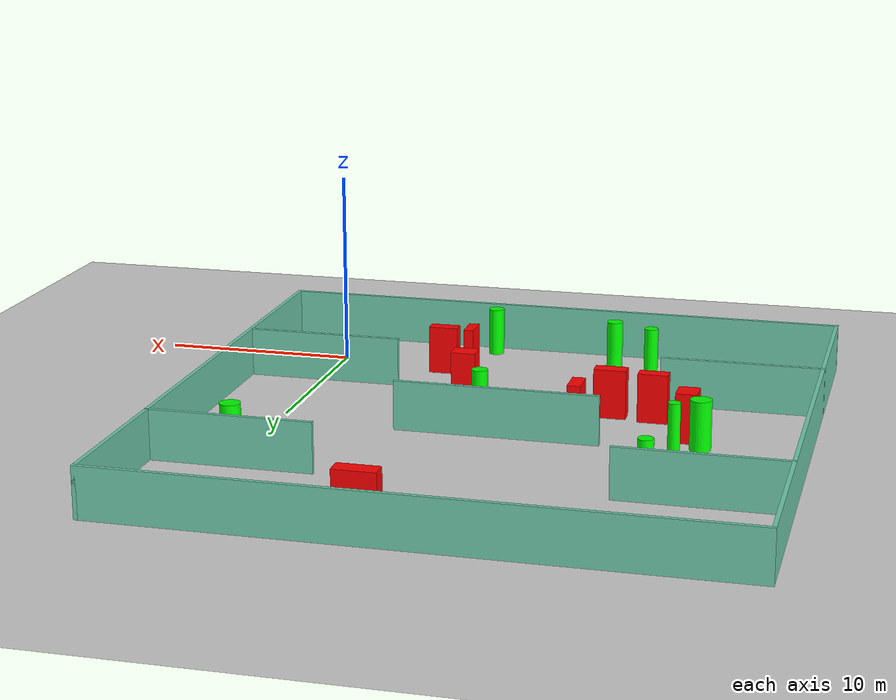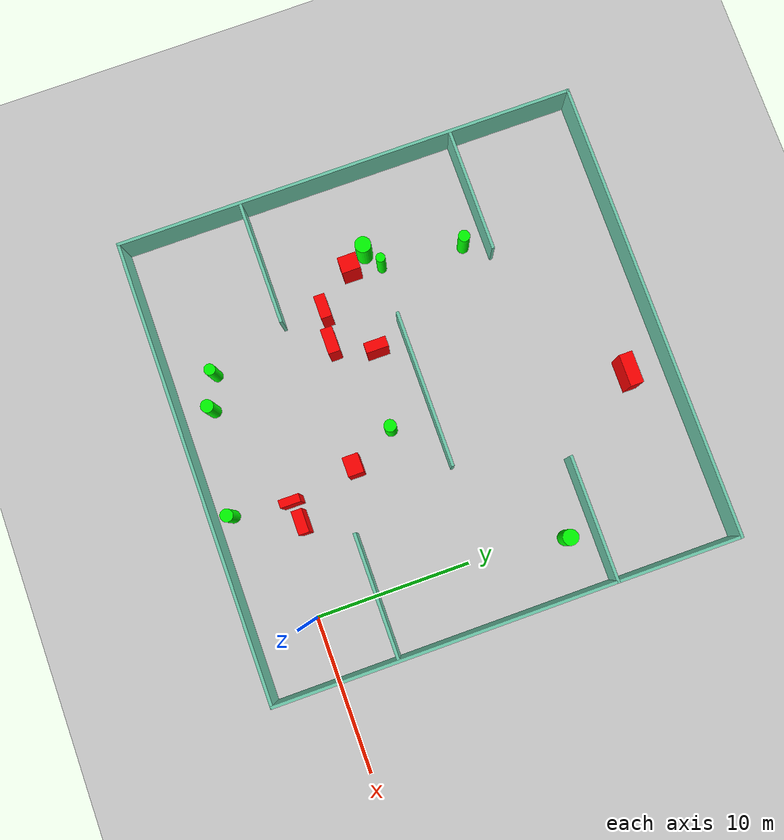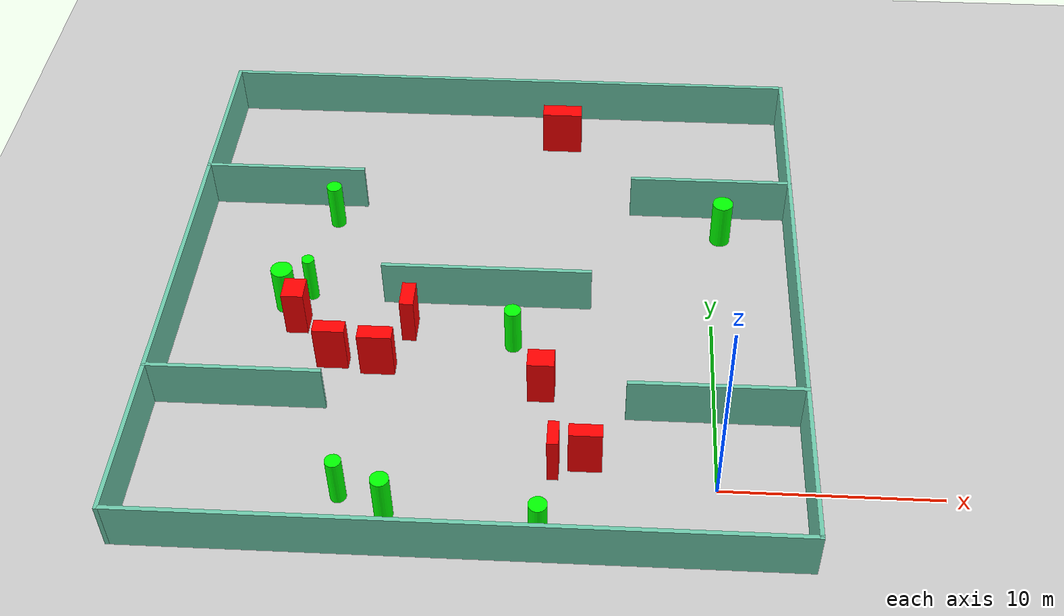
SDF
<sdf version="1.7">
 <world name="default">
  <light name="sun" type="directional">
   <pose>0 0 10 0 -0 0</pose>
   <diffuse>0.8 0.8 0.8 1</diffuse>
   <specular>0.2 0.2 0.2 1</specular>
   <attenuation>
    <range>1000</range>
    <constant>0.9</constant>
    <linear>0.01</linear>
    <quadratic>0.001</quadratic>
   </attenuation>
   <direction>-0.5 0.1 -0.9</direction>
   <spot><inner_angle>0</inner_angle><outer_angle>0</outer_angle><falloff>0</falloff></spot>
  </light>
  <model name="ground_plane">
   <static>1</static>
   <link name="link">
    <collision name="collision">
     <geometry><plane><normal>0 0 1</normal><size>100 100</size></plane></geometry>
     <surface>
      <contact><collide_bitmask>65535</collide_bitmask></contact>
      <friction><ode><mu>100</mu><mu2>50</mu2></ode></friction>
     </surface>
    </collision>
    <visual name="visual">
     <cast_shadows>0</cast_shadows>
     <geometry><plane><normal>0 0 1</normal><size>100 100</size></plane></geometry>
     <material>
      <script><uri>file://media/materials/scripts/gazebo.material</uri><name>Gazebo/Grey</name></script>
     </material>
    </visual>
   </link>
  </model>
  <gravity>0 0 -9.8</gravity>
  <magnetic_field>6e-06 2.3e-05 -4.2e-05</magnetic_field>
  <atmosphere type="adiabatic"/>
  <physics type="ode">
   <max_step_size>0.001</max_step_size>
   <real_time_factor>1</real_time_factor>
   <real_time_update_rate>1000</real_time_update_rate>
  </physics>
  <scene><ambient>0.4 0.4 0.4 1</ambient><background>0.7 0.7 0.7 1</background><shadows>1</shadows></scene>
  <spherical_coordinates>
   <surface_model>EARTH_WGS84</surface_model>
   <latitude_deg>0</latitude_deg>
   <longitude_deg>0</longitude_deg>
   <elevation>0</elevation>
   <heading_deg>0</heading_deg>
  </spherical_coordinates>
  <model name="my_base_walls">
   <link name="Wall_10">
    <collision name="Wall_10_Collision">
     <geometry><box><size>8.2 0.2 2.5</size></box></geometry>
     <pose>0 0 1.25 0 -0 0</pose>
    </collision>
    <visual name="Wall_10_Visual">
     <pose>0 0 1.25 0 -0 0</pose>
     <geometry><box><size>8.2 0.2 2.5</size></box></geometry>
     <material>
      <script><uri>file://media/materials/scripts/gazebo.material</uri><name>Gazebo/Grey</name></script>
      <ambient>0.435294 0.796078 0.67451 1</ambient>
     </material>
     <meta><layer>0</layer></meta>
    </visual>
    <pose>-11 -7 0 0 -0 0</pose>
   </link>
   <link name="Wall_12">
    <collision name="Wall_12_Collision">
     <geometry><box><size>8.2 0.2 2.5</size></box></geometry>
     <pose>0 0 1.25 0 -0 0</pose>
    </collision>
    <visual name="Wall_12_Visual">
     <pose>0 0 1.25 0 -0 0</pose>
     <geometry><box><size>8.2 0.2 2.5</size></box></geometry>
     <material>
      <script><uri>file://media/materials/scripts/gazebo.material</uri><name>Gazebo/Grey</name></script>
      <ambient>0.435294 0.796078 0.67451 1</ambient>
     </material>
     <meta><layer>0</layer></meta>
    </visual>
    <pose>-11 7 0 0 -0 0</pose>
   </link>
   <link name="Wall_14">
    <collision name="Wall_14_Collision">
     <geometry><box><size>8.2 0.2 2.5</size></box></geometry>
     <pose>0 0 1.25 0 -0 0</pose>
    </collision>
    <visual name="Wall_14_Visual">
     <pose>0 0 1.25 0 -0 0</pose>
     <geometry><box><size>8.2 0.2 2.5</size></box></geometry>
     <material>
      <script><uri>file://media/materials/scripts/gazebo.material</uri><name>Gazebo/Grey</name></script>
      <ambient>0.435294 0.796078 0.67451 1</ambient>
     </material>
     <meta><layer>0</layer></meta>
    </visual>
    <pose>11 7 0 0 -0 3.14159</pose>
   </link>
   <link name="Wall_16">
    <collision name="Wall_16_Collision">
     <geometry><box><size>10.2 0.2 2.5</size></box></geometry>
     <pose>0 0 1.25 0 -0 0</pose>
    </collision>
    <visual name="Wall_16_Visual">
     <pose>0 0 1.25 0 -0 0</pose>
     <geometry><box><size>10.2 0.2 2.5</size></box></geometry>
     <material>
      <script><uri>file://media/materials/scripts/gazebo.material</uri><name>Gazebo/Grey</name></script>
      <ambient>0.435294 0.796078 0.67451 1</ambient>
     </material>
     <meta><layer>0</layer></meta>
    </visual>
    <pose>0 0 0 0 -0 3.14159</pose>
   </link>
   <link name="Wall_2">
    <collision name="Wall_2_Collision">
     <geometry><box><size>30.2 0.2 2.5</size></box></geometry>
     <pose>0 0 1.25 0 -0 0</pose>
    </collision>
    <visual name="Wall_2_Visual">
     <pose>0 0 1.25 0 -0 0</pose>
     <geometry><box><size>30.2 0.2 2.5</size></box></geometry>
     <material>
      <script><uri>file://media/materials/scripts/gazebo.material</uri><name>Gazebo/Grey</name></script>
      <ambient>0.435294 0.796078 0.67451 1</ambient>
     </material>
     <meta><layer>0</layer></meta>
    </visual>
    <pose>0 -15 0 0 -0 3.14159</pose>
   </link>
   <link name="Wall_3">
    <collision name="Wall_3_Collision">
     <geometry><box><size>30.2 0.2 2.5</size></box></geometry>
     <pose>0 0 1.25 0 -0 0</pose>
    </collision>
    <visual name="Wall_3_Visual">
     <pose>0 0 1.25 0 -0 0</pose>
     <geometry><box><size>30.2 0.2 2.5</size></box></geometry>
     <material>
      <script><uri>file://media/materials/scripts/gazebo.material</uri><name>Gazebo/Grey</name></script>
      <ambient>0.435294 0.796078 0.67451 1</ambient>
     </material>
     <meta><layer>0</layer></meta>
    </visual>
    <pose>-15 0 0 0 -0 1.5708</pose>
   </link>
   <link name="Wall_4">
    <collision name="Wall_4_Collision">
     <geometry><box><size>30.2 0.2 2.5</size></box></geometry>
     <pose>0 0 1.25 0 -0 0</pose>
    </collision>
    <visual name="Wall_4_Visual">
     <pose>0 0 1.25 0 -0 0</pose>
     <geometry><box><size>30.2 0.2 2.5</size></box></geometry>
     <material>
      <script><uri>file://media/materials/scripts/gazebo.material</uri><name>Gazebo/Grey</name></script>
      <ambient>0.435294 0.796078 0.67451 1</ambient>
     </material>
     <meta><layer>0</layer></meta>
    </visual>
    <pose>0 15 0 0 -0 0</pose>
   </link>
   <link name="Wall_6">
    <collision name="Wall_6_Collision">
     <geometry><box><size>30.2 0.2 2.5</size></box></geometry>
     <pose>0 0 1.25 0 -0 0</pose>
    </collision>
    <visual name="Wall_6_Visual">
     <pose>0 0 1.25 0 -0 0</pose>
     <geometry><box><size>30.2 0.2 2.5</size></box></geometry>
     <material>
      <script><uri>file://media/materials/scripts/gazebo.material</uri><name>Gazebo/Grey</name></script>
      <ambient>0.435294 0.796078 0.67451 1</ambient>
     </material>
     <meta><layer>0</layer></meta>
    </visual>
    <pose>15 0 0 0 -0 1.5708</pose>
   </link>
   <link name="Wall_8">
    <collision name="Wall_8_Collision">
     <geometry><box><size>8.2 0.2 2.5</size></box></geometry>
     <pose>0 0 1.25 0 -0 0</pose>
    </collision>
    <visual name="Wall_8_Visual">
     <pose>0 0 1.25 0 -0 0</pose>
     <geometry><box><size>8.2 0.2 2.5</size></box></geometry>
     <material>
      <script><uri>file://media/materials/scripts/gazebo.material</uri><name>Gazebo/Grey</name></script>
      <ambient>0.435294 0.796078 0.67451 1</ambient>
     </material>
     <meta><layer>0</layer></meta>
    </visual>
    <pose>11 -7 0 0 -0 3.14159</pose>
   </link>
   <static>1</static>
   <pose>-11 11 0 0 -0 0</pose>
  </model>
  <model name="cylinder1">
   <static>1</static>
   <link name="link">
    <inertial>
     <mass>1</mass>
     <inertia><ixx>0.5</ixx><ixy>0</ixy><ixz>0</ixz><iyy>0.5</iyy><iyz>0</iyz><izz>1</izz></inertia>
    </inertial>
    <collision name="collision">
     <geometry><cylinder><radius>0.39952620678589557</radius><length>2.5</length></cylinder></geometry>
    </collision>
    <visual name="visual">
     <geometry><cylinder><radius>0.39952620678589557</radius><length>2.5</length></cylinder></geometry>
     <material>
      <ambient>0 1 0 1</ambient>
      <diffuse>0 1 0 1</diffuse>
      <specular>0.1 0.1 0.1 1</specular>
      <emissive>0 0 0 0</emissive>
     </material>
    </visual>
   </link>
   <pose>-9.5330964168365 8.21786496166039 1.25 0 0 0</pose>
  </model>
  <model name="cylinder2">
   <static>1</static>
   <link name="link">
    <inertial>
     <mass>1</mass>
     <inertia><ixx>0.5</ixx><ixy>0</ixy><ixz>0</ixz><iyy>0.5</iyy><iyz>0</iyz><izz>1</izz></inertia>
    </inertial>
    <collision name="collision">
     <geometry><cylinder><radius>0.5261596305137141</radius><length>2.5</length></cylinder></geometry>
    </collision>
    <visual name="visual">
     <geometry><cylinder><radius>0.5261596305137141</radius><length>2.5</length></cylinder></geometry>
     <material>
      <ambient>0 1 0 1</ambient>
      <diffuse>0 1 0 1</diffuse>
      <specular>0.1 0.1 0.1 1</specular>
      <emissive>0 0 0 0</emissive>
     </material>
    </visual>
   </link>
   <pose>-20.859064588958002 10.402655733355598 1.25 0 0 0</pose>
  </model>
  <model name="cylinder3">
   <static>1</static>
   <link name="link">
    <inertial>
     <mass>1</mass>
     <inertia><ixx>0.5</ixx><ixy>0</ixy><ixz>0</ixz><iyy>0.5</iyy><iyz>0</iyz><izz>1</izz></inertia>
    </inertial>
    <collision name="collision">
     <geometry><cylinder><radius>0.5082617412621724</radius><length>2.5</length></cylinder></geometry>
    </collision>
    <visual name="visual">
     <geometry><cylinder><radius>0.5082617412621724</radius><length>2.5</length></cylinder></geometry>
     <material>
      <ambient>0 1 0 1</ambient>
      <diffuse>0 1 0 1</diffuse>
      <specular>0.1 0.1 0.1 1</specular>
      <emissive>0 0 0 0</emissive>
     </material>
    </visual>
   </link>
   <pose>0.5575503107304733 16.238142232348363 1.25 0 0 0</pose>
  </model>
  <model name="cylinder4">
   <static>1</static>
   <link name="link">
    <inertial>
     <mass>1</mass>
     <inertia><ixx>0.5</ixx><ixy>0</ixy><ixz>0</ixz><iyy>0.5</iyy><iyz>0</iyz><izz>1</izz></inertia>
    </inertial>
    <collision name="collision">
     <geometry><cylinder><radius>0.4181911181573695</radius><length>2.5</length></cylinder></geometry>
    </collision>
    <visual name="visual">
     <geometry><cylinder><radius>0.4181911181573695</radius><length>2.5</length></cylinder></geometry>
     <material>
      <ambient>0 1 0 1</ambient>
      <diffuse>0 1 0 1</diffuse>
      <specular>0.1 0.1 0.1 1</specular>
      <emissive>0 0 0 0</emissive>
     </material>
    </visual>
   </link>
   <pose>-14.45076310091199 -1.9585230941668086 1.25 0 0 0</pose>
  </model>
  <model name="cylinder5">
   <static>1</static>
   <link name="link">
    <inertial>
     <mass>1</mass>
     <inertia><ixx>0.5</ixx><ixy>0</ixy><ixz>0</ixz><iyy>0.5</iyy><iyz>0</iyz><izz>1</izz></inertia>
    </inertial>
    <collision name="collision">
     <geometry><cylinder><radius>0.3031781274515199</radius><length>2.5</length></cylinder></geometry>
    </collision>
    <visual name="visual">
     <geometry><cylinder><radius>0.3031781274515199</radius><length>2.5</length></cylinder></geometry>
     <material>
      <ambient>0 1 0 1</ambient>
      <diffuse>0 1 0 1</diffuse>
      <specular>0.1 0.1 0.1 1</specular>
      <emissive>0 0 0 0</emissive>
     </material>
    </visual>
   </link>
   <pose>-19.70726437195389 11.168355270774304 1.25 0 0 0</pose>
  </model>
  <model name="cylinder6">
   <static>1</static>
   <link name="link">
    <inertial>
     <mass>1</mass>
     <inertia><ixx>0.5</ixx><ixy>0</ixy><ixz>0</ixz><iyy>0.5</iyy><iyz>0</iyz><izz>1</izz></inertia>
    </inertial>
    <collision name="collision">
     <geometry><cylinder><radius>0.37973707502019766</radius><length>2.5</length></cylinder></geometry>
    </collision>
    <visual name="visual">
     <geometry><cylinder><radius>0.37973707502019766</radius><length>2.5</length></cylinder></geometry>
     <material>
      <ambient>0 1 0 1</ambient>
      <diffuse>0 1 0 1</diffuse>
      <specular>0.1 0.1 0.1 1</specular>
      <emissive>0 0 0 0</emissive>
     </material>
    </visual>
   </link>
   <pose>-19.252361170669154 16.557954228877673 1.25 0 0 0</pose>
  </model>
  <model name="cylinder7">
   <static>1</static>
   <link name="link">
    <inertial>
     <mass>1</mass>
     <inertia><ixx>0.5</ixx><ixy>0</ixy><ixz>0</ixz><iyy>0.5</iyy><iyz>0</iyz><izz>1</izz></inertia>
    </inertial>
    <collision name="collision">
     <geometry><cylinder><radius>0.36580529056018957</radius><length>2.5</length></cylinder></geometry>
    </collision>
    <visual name="visual">
     <geometry><cylinder><radius>0.36580529056018957</radius><length>2.5</length></cylinder></geometry>
     <material>
      <ambient>0 1 0 1</ambient>
      <diffuse>0 1 0 1</diffuse>
      <specular>0.1 0.1 0.1 1</specular>
      <emissive>0 0 0 0</emissive>
     </material>
    </visual>
   </link>
   <pose>-16.56066733647104 -1.0968142407168537 1.25 0 0 0</pose>
  </model>
  <model name="cylinder8">
   <static>1</static>
   <link name="link">
    <inertial>
     <mass>1</mass>
     <inertia><ixx>0.5</ixx><ixy>0</ixy><ixz>0</ixz><iyy>0.5</iyy><iyz>0</iyz><izz>1</izz></inertia>
    </inertial>
    <collision name="collision">
     <geometry><cylinder><radius>0.41517707396511505</radius><length>2.5</length></cylinder></geometry>
    </collision>
    <visual name="visual">
     <geometry><cylinder><radius>0.41517707396511505</radius><length>2.5</length></cylinder></geometry>
     <material>
      <ambient>0 1 0 1</ambient>
      <diffuse>0 1 0 1</diffuse>
      <specular>0.1 0.1 0.1 1</specular>
      <emissive>0 0 0 0</emissive>
     </material>
    </visual>
   </link>
   <pose>-7.695168321669485 -2.9394577666441597 1.25 0 0 0</pose>
  </model>
  <model name="box1">
   <static>1</static>
   <link name="link">
    <inertial>
     <mass>1</mass>
     <inertia><ixx>0.083</ixx><ixy>0</ixy><ixz>0</ixz><iyy>0.083</iyy><iyz>0</iyz><izz>0.083</izz></inertia>
    </inertial>
    <collision name="collision">
     <geometry><box><size>0.6660960789927785 1.443273456493209 2.5</size></box></geometry>
    </collision>
    <visual name="visual">
     <geometry><box><size>0.6660960789927785 1.443273456493209 2.5</size></box></geometry>
     <material>
      <ambient>1 0 0 1</ambient>
      <diffuse>1 0 0 1</diffuse>
      <specular>0.1 0.1 0.1 1</specular>
      <emissive>0 0 0 0</emissive>
     </material>
    </visual>
    <sensor name="my_contact" type="contact">
     <contact><collision>box_collision</collision><topic>__default_topic__</topic></contact>
    </sensor>
   </link>
   <pose>-14.579822424737868 9.072745989051008 1.25 0 0 0</pose>
  </model>
  <model name="box2">
   <static>1</static>
   <link name="link">
    <inertial>
     <mass>1</mass>
     <inertia><ixx>0.083</ixx><ixy>0</ixy><ixz>0</ixz><iyy>0.083</iyy><iyz>0</iyz><izz>0.083</izz></inertia>
    </inertial>
    <collision name="collision">
     <geometry><box><size>0.5166243459869555 1.3104119495082016 2.5</size></box></geometry>
    </collision>
    <visual name="visual">
     <geometry><box><size>0.5166243459869555 1.3104119495082016 2.5</size></box></geometry>
     <material>
      <ambient>1 0 0 1</ambient>
      <diffuse>1 0 0 1</diffuse>
      <specular>0.1 0.1 0.1 1</specular>
      <emissive>0 0 0 0</emissive>
     </material>
    </visual>
    <sensor name="my_contact" type="contact">
     <contact><collision>box_collision</collision><topic>__default_topic__</topic></contact>
    </sensor>
   </link>
   <pose>-7.250553293935631 0.9291260194963722 1.25 0 0 0</pose>
  </model>
  <model name="box3">
   <static>1</static>
   <link name="link">
    <inertial>
     <mass>1</mass>
     <inertia><ixx>0.083</ixx><ixy>0</ixy><ixz>0</ixz><iyy>0.083</iyy><iyz>0</iyz><izz>0.083</izz></inertia>
    </inertial>
    <collision name="collision">
     <geometry><box><size>1.2506362219406377 1.0124342684809078 2.5</size></box></geometry>
    </collision>
    <visual name="visual">
     <geometry><box><size>1.2506362219406377 1.0124342684809078 2.5</size></box></geometry>
     <material>
      <ambient>1 0 0 1</ambient>
      <diffuse>1 0 0 1</diffuse>
      <specular>0.1 0.1 0.1 1</specular>
      <emissive>0 0 0 0</emissive>
     </material>
    </visual>
    <sensor name="my_contact" type="contact">
     <contact><collision>box_collision</collision><topic>__default_topic__</topic></contact>
    </sensor>
   </link>
   <pose>-8.02658691274981 5.2808811661874255 1.25 0 0 0</pose>
  </model>
  <model name="box4">
   <static>1</static>
   <link name="link">
    <inertial>
     <mass>1</mass>
     <inertia><ixx>0.083</ixx><ixy>0</ixy><ixz>0</ixz><iyy>0.083</iyy><iyz>0</iyz><izz>0.083</izz></inertia>
    </inertial>
    <collision name="collision">
     <geometry><box><size>1.5014152760467305 0.7098522287518475 2.5</size></box></geometry>
    </collision>
    <visual name="visual">
     <geometry><box><size>1.5014152760467305 0.7098522287518475 2.5</size></box></geometry>
     <material>
      <ambient>1 0 0 1</ambient>
      <diffuse>1 0 0 1</diffuse>
      <specular>0.1 0.1 0.1 1</specular>
      <emissive>0 0 0 0</emissive>
     </material>
    </visual>
    <sensor name="my_contact" type="contact">
     <contact><collision>box_collision</collision><topic>__default_topic__</topic></contact>
    </sensor>
   </link>
   <pose>-17.99410608178396 6.75440823052184 1.25 0 0 0</pose>
  </model>
  <model name="box5">
   <static>1</static>
   <link name="link">
    <inertial>
     <mass>1</mass>
     <inertia><ixx>0.083</ixx><ixy>0</ixy><ixz>0</ixz><iyy>0.083</iyy><iyz>0</iyz><izz>0.083</izz></inertia>
    </inertial>
    <collision name="collision">
     <geometry><box><size>1.6266729857810807 0.7674155482477738 2.5</size></box></geometry>
    </collision>
    <visual name="visual">
     <geometry><box><size>1.6266729857810807 0.7674155482477738 2.5</size></box></geometry>
     <material>
      <ambient>1 0 0 1</ambient>
      <diffuse>1 0 0 1</diffuse>
      <specular>0.1 0.1 0.1 1</specular>
      <emissive>0 0 0 0</emissive>
     </material>
    </visual>
    <sensor name="my_contact" type="contact">
     <contact><collision>box_collision</collision><topic>__default_topic__</topic></contact>
    </sensor>
   </link>
   <pose>-15.806060923671861 6.4949596295317455 1.25 0 0 0</pose>
  </model>
  <model name="box6">
   <static>1</static>
   <link name="link">
    <inertial>
     <mass>1</mass>
     <inertia><ixx>0.083</ixx><ixy>0</ixy><ixz>0</ixz><iyy>0.083</iyy><iyz>0</iyz><izz>0.083</izz></inertia>
    </inertial>
    <collision name="collision">
     <geometry><box><size>1.051636742000067 1.2126457185213968 2.5</size></box></geometry>
    </collision>
    <visual name="visual">
     <geometry><box><size>1.051636742000067 1.2126457185213968 2.5</size></box></geometry>
     <material>
      <ambient>1 0 0 1</ambient>
      <diffuse>1 0 0 1</diffuse>
      <specular>0.1 0.1 0.1 1</specular>
      <emissive>0 0 0 0</emissive>
     </material>
    </visual>
    <sensor name="my_contact" type="contact">
     <contact><collision>box_collision</collision><topic>__default_topic__</topic></contact>
    </sensor>
   </link>
   <pose>-20.052814729254813 9.19255465450113 1.25 0 0 0</pose>
  </model>
  <model name="box7">
   <static>1</static>
   <link name="link">
    <inertial>
     <mass>1</mass>
     <inertia><ixx>0.083</ixx><ixy>0</ixy><ixz>0</ixz><iyy>0.083</iyy><iyz>0</iyz><izz>0.083</izz></inertia>
    </inertial>
    <collision name="collision">
     <geometry><box><size>1.516099963194547 0.6831804270328917 2.5</size></box></geometry>
    </collision>
    <visual name="visual">
     <geometry><box><size>1.516099963194547 0.6831804270328917 2.5</size></box></geometry>
     <material>
      <ambient>1 0 0 1</ambient>
      <diffuse>1 0 0 1</diffuse>
      <specular>0.1 0.1 0.1 1</specular>
      <emissive>0 0 0 0</emissive>
     </material>
    </visual>
    <sensor name="my_contact" type="contact">
     <contact><collision>box_collision</collision><topic>__default_topic__</topic></contact>
    </sensor>
   </link>
   <pose>-5.835975200831072 1.1315386325463708 1.25 0 0 0</pose>
  </model>
  <model name="box8">
   <static>1</static>
   <link name="link">
    <inertial>
     <mass>1</mass>
     <inertia><ixx>0.083</ixx><ixy>0</ixy><ixz>0</ixz><iyy>0.083</iyy><iyz>0</iyz><izz>0.083</izz></inertia>
    </inertial>
    <collision name="collision">
     <geometry><box><size>2.0636713211465896 0.864873978515553 2.5</size></box></geometry>
    </collision>
    <visual name="visual">
     <geometry><box><size>2.0636713211465896 0.864873978515553 2.5</size></box></geometry>
     <material>
      <ambient>1 0 0 1</ambient>
      <diffuse>1 0 0 1</diffuse>
      <specular>0.1 0.1 0.1 1</specular>
      <emissive>0 0 0 0</emissive>
     </material>
    </visual>
    <sensor name="my_contact" type="contact">
     <contact><collision>box_collision</collision><topic>__default_topic__</topic></contact>
    </sensor>
   </link>
   <pose>-7.880279802625413 23.391445982659246 1.25 0 0 0</pose>
  </model>
 </world>
</sdf>
